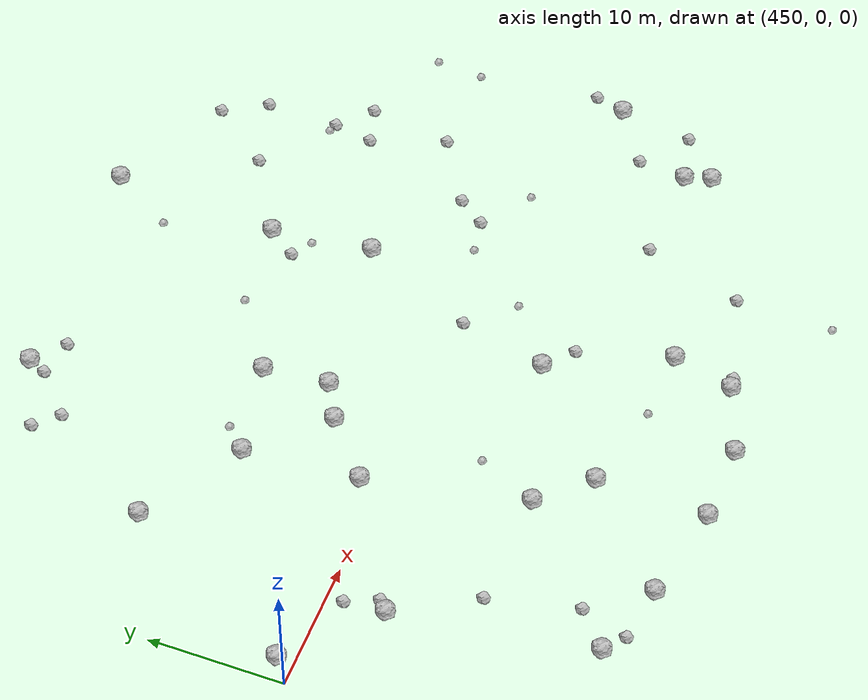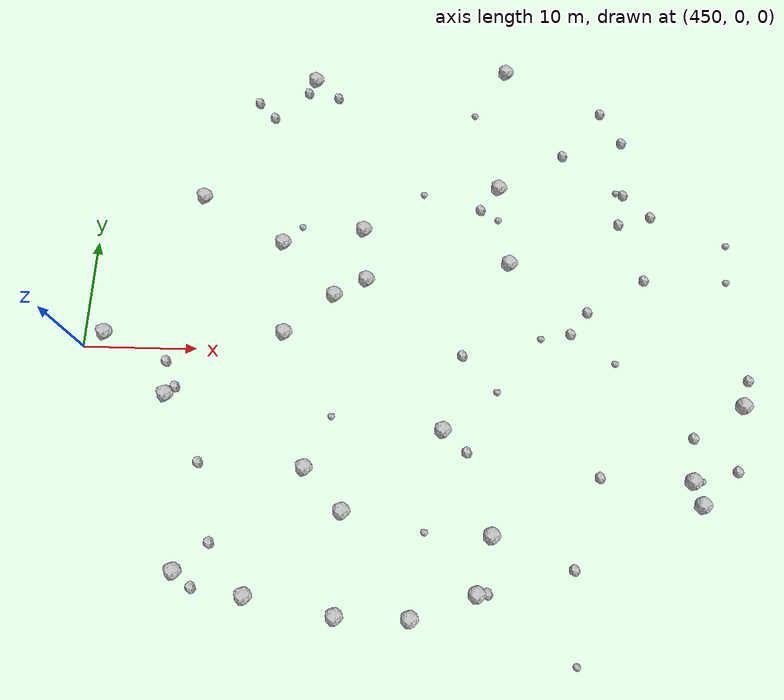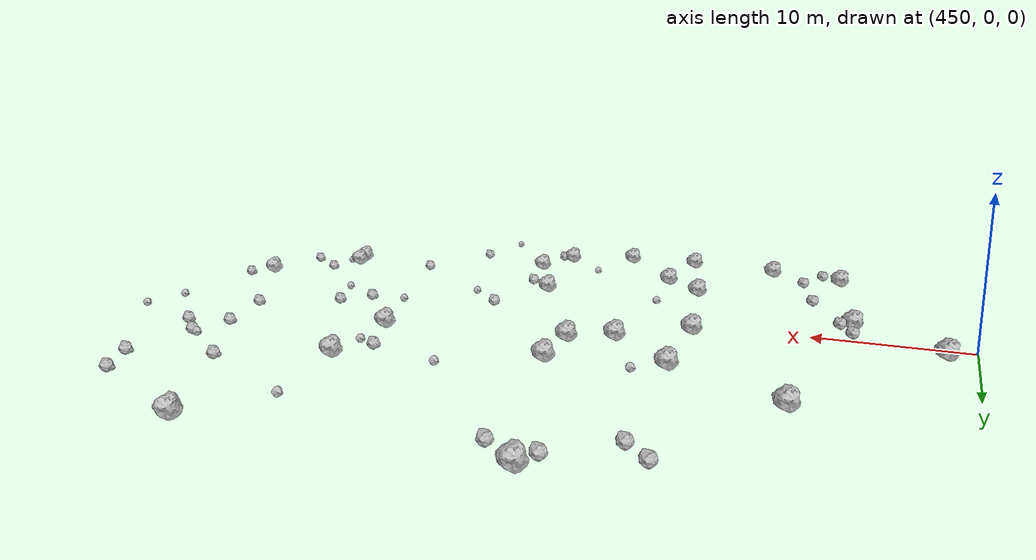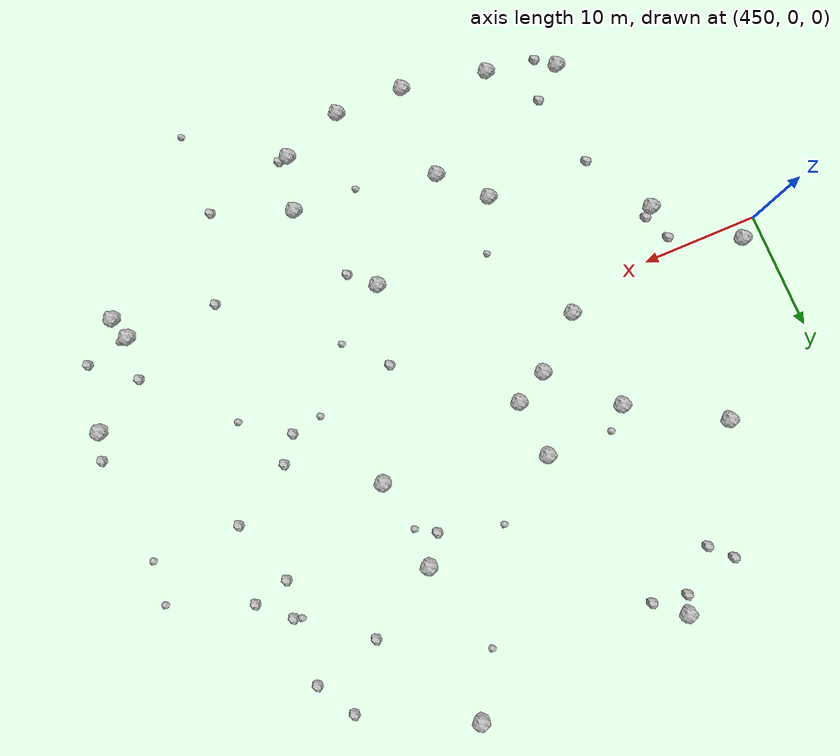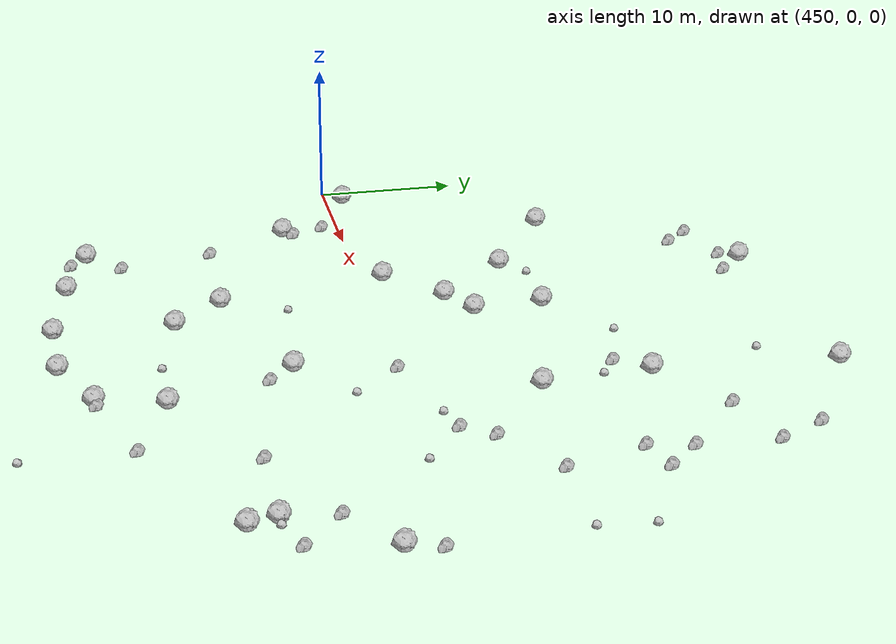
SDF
<sdf version="1.6">
 <world name="default">
  <include><uri>model://sun</uri></include>
  <model name="rock1_12_3">
   <include><uri>model://rock1</uri><pose>460.09994711555976 -18.938986220290627 0.5 0 0 0</pose></include>
  </model>
  <model name="rock1_12_4">
   <include><uri>model://rock1</uri><pose>503.28828569361633 -12.779987050489762 0.5 0 0 0</pose></include>
  </model>
  <model name="rock1_12_5">
   <include><uri>model://rock1</uri><pose>474.6993763933523 6.789732986264674 0.5 0 0 0</pose></include>
  </model>
  <model name="rock1_12_6">
   <include><uri>model://rock1</uri><pose>457.77197629993634 -4.22128055122025 0.5 0 0 0</pose></include>
  </model>
  <model name="rock1_12_7">
   <include><uri>model://rock1</uri><pose>473.4533100759686 -13.884513250857339 0.5 0 0 0</pose></include>
  </model>
  <model name="rock1_12_8">
   <include><uri>model://rock1</uri><pose>468.9822877971839 27.700474565433467 0.5 0 0 0</pose></include>
  </model>
  <model name="rock1_12_9">
   <include><uri>model://rock1</uri><pose>486.7019605172185 16.232393515752157 0.5 0 0 0</pose></include>
  </model>
  <model name="rock1_12_10">
   <include><uri>model://rock1</uri><pose>474.2762206808337 11.714533585906345 0.5 0 0 0</pose></include>
  </model>
  <model name="rock1_12_11">
   <include><uri>model://rock1</uri><pose>470.1322692926237 -10.342464317426312 0.5 0 0 0</pose></include>
  </model>
  <model name="rock1_12_12">
   <include><uri>model://rock1</uri><pose>487.59106650273065 8.593806096890134 0.5 0 0 0</pose></include>
  </model>
  <model name="rock1_12_13">
   <include><uri>model://rock1</uri><pose>507.51278203364427 -4.265797010705622 0.5 0 0 0</pose></include>
  </model>
  <model name="rock1_12_14">
   <include><uri>model://rock1</uri><pose>473.2727232513681 -22.157177639005475 0.5 0 0 0</pose></include>
  </model>
  <model name="rock1_12_15">
   <include><uri>model://rock1</uri><pose>465.92367528928537 -20.74889283968284 0.5 0 0 0</pose></include>
  </model>
  <model name="rock1_12_16">
   <include><uri>model://rock1</uri><pose>487.52566982488247 28.95235328110021 0.5 0 0 0</pose></include>
  </model>
  <model name="rock1_12_17">
   <include><uri>model://rock1</uri><pose>479.262490662733 -22.22852098480061 0.5 0 0 0</pose></include>
  </model>
  <model name="rock1_12_18">
   <include><uri>model://rock1</uri><pose>484.607938386834 -20.2470190898917 0.5 0 0 0</pose></include>
  </model>
  <model name="rock1_12_19">
   <include><uri>model://rock1</uri><pose>481.7402516190356 -6.904584026092493 0.5 0 0 0</pose></include>
  </model>
  <model name="rock1_12_20">
   <include><uri>model://rock1</uri><pose>459.31659157342136 14.798199618293765 0.5 0 0 0</pose></include>
  </model>
  <model name="rock1_12_21">
   <include><uri>model://rock1</uri><pose>471.8805184005414 5.2379902298918495 0.5 0 0 0</pose></include>
  </model>
  <model name="rock1_12_22">
   <include><uri>model://rock1</uri><pose>467.61290677152454 1.5902185229371426 0.5 0 0 0</pose></include>
  </model>
  <model name="rock1_12_23">
   <include><uri>model://rock1</uri><pose>451.77244356553643 1.2705714073791192 0.5 0 0 0</pose></include>
  </model>
  <model name="rock1_12_24">
   <include><uri>model://rock1</uri><pose>485.8325605387856 -15.617259626023166 0.5 0 0 0</pose></include>
  </model>
  <model name="rock1_12_25">
   <include><uri>model://rock1</uri><pose>466.94712123465746 10.26432442003832 0.5 0 0 0</pose></include>
  </model>
  <model name="rock1_12_26">
   <include><uri>model://rock1</uri><pose>502.661692971732 -10.820832845147756 0.5 0 0 0</pose></include>
  </model>
  <model name="rock2_12_0">
   <include><uri>model://rock2</uri><pose>463.61068578606506 25.121229399402672 0.3 0 0 0</pose></include>
  </model>
  <model name="rock2_12_1">
   <include><uri>model://rock2</uri><pose>494.90685150382166 -10.645918229884447 0.3 0 0 0</pose></include>
  </model>
  <model name="rock2_12_2">
   <include><uri>model://rock2</uri><pose>457.4799645522657 -1.2249807875664551 0.3 0 0 0</pose></include>
  </model>
  <model name="rock2_12_3">
   <include><uri>model://rock2</uri><pose>465.21472929283004 23.489812862950032 0.3 0 0 0</pose></include>
  </model>
  <model name="rock2_12_4">
   <include><uri>model://rock2</uri><pose>498.26589718937987 15.807697938234483 0.3 0 0 0</pose></include>
  </model>
  <model name="rock2_12_5">
   <include><uri>model://rock2</uri><pose>483.35255804053907 -0.21285954650131345 0.3 0 0 0</pose></include>
  </model>
  <model name="rock2_12_6">
   <include><uri>model://rock2</uri><pose>458.50531708127704 -3.5244658402470534 0.3 0 0 0</pose></include>
  </model>
  <model name="rock2_12_7">
   <include><uri>model://rock2</uri><pose>471.2344777038859 25.843825234835542 0.3 0 0 0</pose></include>
  </model>
  <model name="rock2_12_8">
   <include><uri>model://rock2</uri><pose>508.1382232152056 -1.9716284624084643 0.3 0 0 0</pose></include>
  </model>
  <model name="rock2_12_9">
   <include><uri>model://rock2</uri><pose>492.7615889691197 19.874072856783428 0.3 0 0 0</pose></include>
  </model>
  <model name="rock2_12_10">
   <include><uri>model://rock2</uri><pose>485.0004729286702 14.00296309320084 0.3 0 0 0</pose></include>
  </model>
  <model name="rock2_12_11">
   <include><uri>model://rock2</uri><pose>497.682572237622 12.78253750928365 0.3 0 0 0</pose></include>
  </model>
  <model name="rock2_12_12">
   <include><uri>model://rock2</uri><pose>500.67889391607883 13.59572356645483 0.3 0 0 0</pose></include>
  </model>
  <model name="rock2_12_13">
   <include><uri>model://rock2</uri><pose>494.4661996610034 4.0605199776912 0.3 0 0 0</pose></include>
  </model>
  <model name="rock2_12_14">
   <include><uri>model://rock2</uri><pose>496.52799548066616 24.575110137595935 0.3 0 0 0</pose></include>
  </model>
  <model name="rock2_12_15">
   <include><uri>model://rock2</uri><pose>492.4930158433896 -18.166680102601294 0.3 0 0 0</pose></include>
  </model>
  <model name="rock2_12_16">
   <include><uri>model://rock2</uri><pose>498.41972763559323 21.392974102826287 0.3 0 0 0</pose></include>
  </model>
  <model name="rock2_12_17">
   <include><uri>model://rock2</uri><pose>492.90048354869447 1.990606371310463 0.3 0 0 0</pose></include>
  </model>
  <model name="rock2_12_18">
   <include><uri>model://rock2</uri><pose>483.7566682733886 -8.740237528247334 0.3 0 0 0</pose></include>
  </model>
  <model name="rock2_12_19">
   <include><uri>model://rock2</uri><pose>485.4463740416405 -20.147615986650912 0.3 0 0 0</pose></include>
  </model>
  <model name="rock2_12_20">
   <include><uri>model://rock2</uri><pose>461.1615515117839 -10.038272362748415 0.3 0 0 0</pose></include>
  </model>
  <model name="rock2_12_21">
   <include><uri>model://rock2</uri><pose>468.3265665941029 26.34066191575831 0.3 0 0 0</pose></include>
  </model>
  <model name="rock2_12_22">
   <include><uri>model://rock2</uri><pose>461.60759068910363 -20.14908560146133 0.3 0 0 0</pose></include>
  </model>
  <model name="rock2_12_23">
   <include><uri>model://rock2</uri><pose>506.4962748524521 -9.916044357532115 0.3 0 0 0</pose></include>
  </model>
  <model name="rock2_12_24">
   <include><uri>model://rock2</uri><pose>462.7263626171995 -16.610463900886135 0.3 0 0 0</pose></include>
  </model>
  <model name="rock2_12_25">
   <include><uri>model://rock2</uri><pose>503.00643102184307 -7.1434426280669 0.3 0 0 0</pose></include>
  </model>
  <model name="rock2_12_26">
   <include><uri>model://rock2</uri><pose>499.6713970740849 7.238987222770582 0.3 0 0 0</pose></include>
  </model>
  <model name="rock3_12_0">
   <include><uri>model://rock3</uri><pose>472.14504653838134 -5.882390443566475 0.2 0 0 0</pose></include>
  </model>
  <model name="rock3_12_1">
   <include><uri>model://rock3</uri><pose>479.7200887909832 15.475295426240962 0.2 0 0 0</pose></include>
  </model>
  <model name="rock3_12_2">
   <include><uri>model://rock3</uri><pose>496.68961998878893 -0.6812169717718213 0.2 0 0 0</pose></include>
  </model>
  <model name="rock3_12_3">
   <include><uri>model://rock3</uri><pose>486.35938023569446 -3.4420859947354394 0.2 0 0 0</pose></include>
  </model>
  <model name="rock3_12_4">
   <include><uri>model://rock3</uri><pose>480.2773575265622 -15.446968806744433 0.2 0 0 0</pose></include>
  </model>
  <model name="rock3_12_5">
   <include><uri>model://rock3</uri><pose>486.5967723613765 12.996363906445595 0.2 0 0 0</pose></include>
  </model>
  <model name="rock3_12_6">
   <include><uri>model://rock3</uri><pose>468.5845905217305 11.912221972745769 0.2 0 0 0</pose></include>
  </model>
  <model name="rock3_12_7">
   <include><uri>model://rock3</uri><pose>492.3778520858327 -25.507218700644916 0.2 0 0 0</pose></include>
  </model>
  <model name="rock3_12_8">
   <include><uri>model://rock3</uri><pose>507.07735642253783 7.189811496318711 0.2 0 0 0</pose></include>
  </model>
  <model name="rock3_12_9">
   <include><uri>model://rock3</uri><pose>503.4095035016663 -10.796248159931235 0.2 0 0 0</pose></include>
  </model>
  <model name="rock3_12_10">
   <include><uri>model://rock3</uri><pose>497.62021398592367 16.028447372948875 0.2 0 0 0</pose></include>
  </model>
  <model name="rock3_12_11">
   <include><uri>model://rock3</uri><pose>507.38457478444076 10.822647290236993 0.2 0 0 0</pose></include>
  </model>
  <model name="rock3_12_12">
   <include><uri>model://rock3</uri><pose>490.25574380072754 1.4865489271190562 0.2 0 0 0</pose></include>
  </model>
  <model name="rock3_12_13">
   <include><uri>model://rock3</uri><pose>484.4816460759813 24.109243883823495 0.2 0 0 0</pose></include>
  </model>
 </world>
</sdf>
